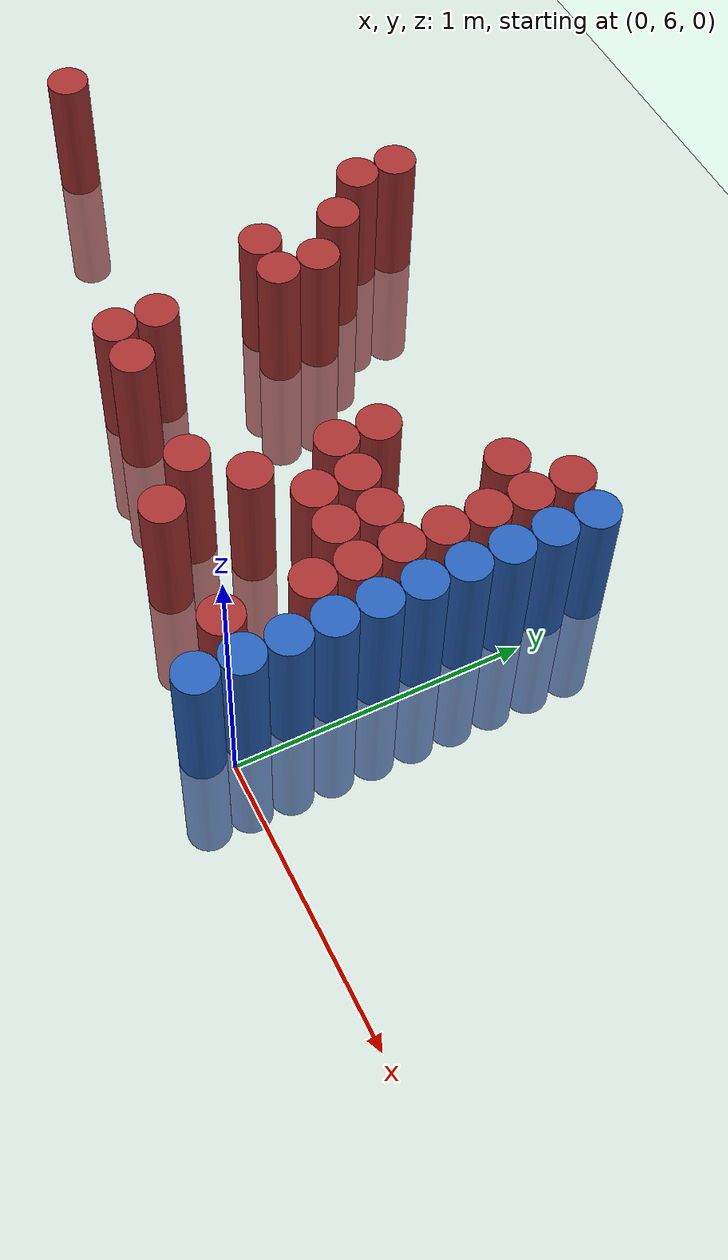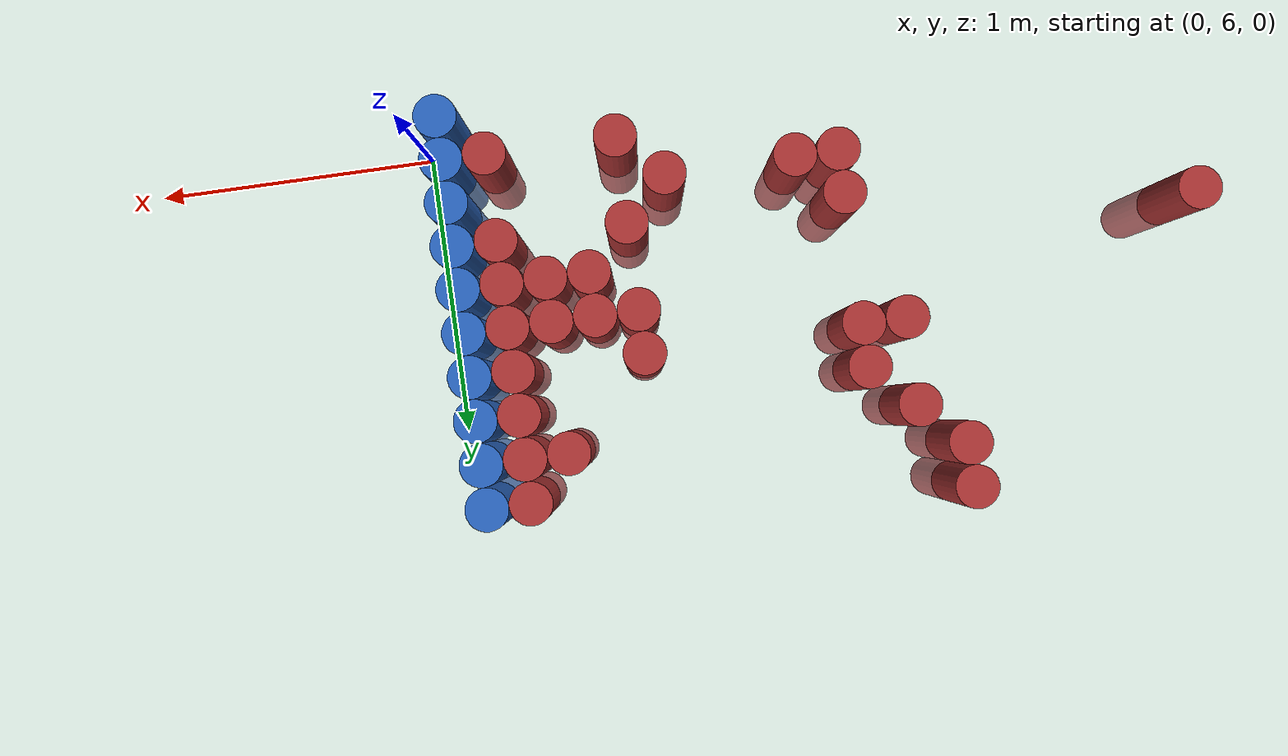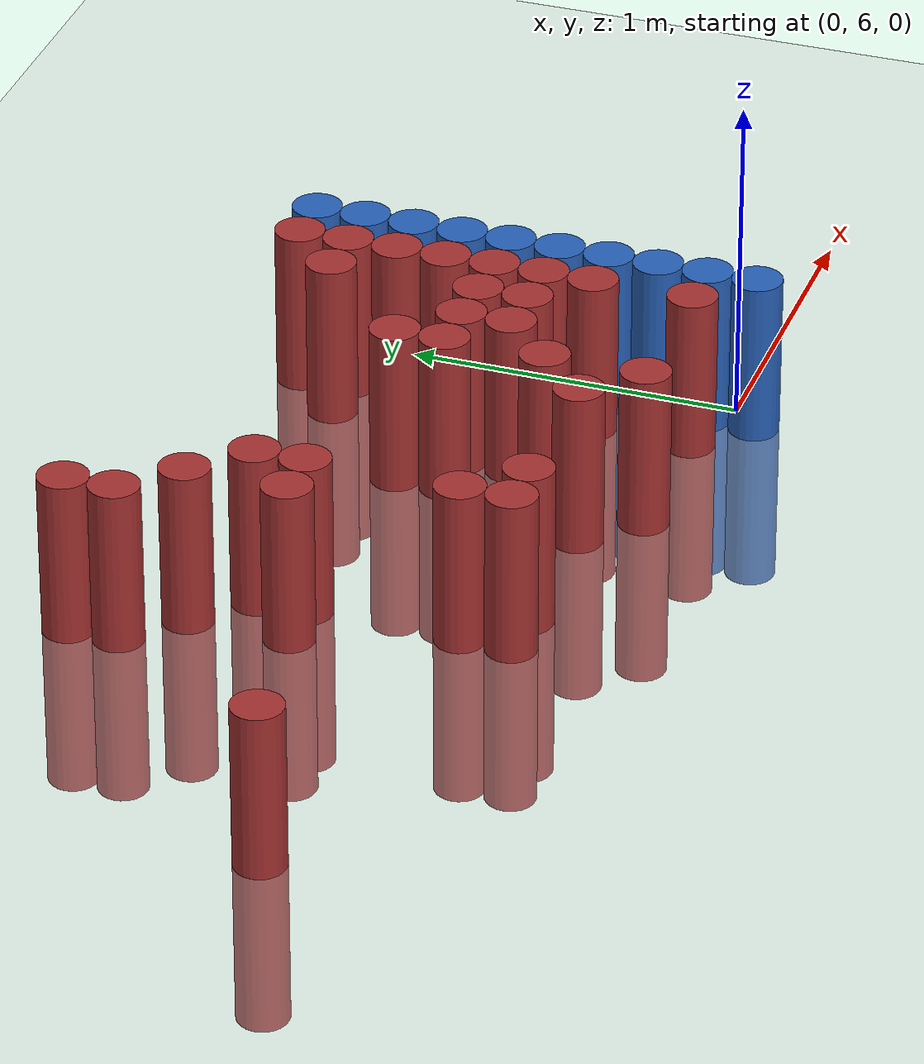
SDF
<sdf version="1.6">
 <world name="default">
  <model name="ground_plane">
   <static>1</static>
   <link name="link">
    <collision name="collision">
     <geometry><plane><normal>0 0 1</normal><size>100 100</size></plane></geometry>
     <surface><friction><ode><mu>100</mu><mu2>50</mu2></ode></friction></surface>
    </collision>
    <visual name="visual">
     <cast_shadows>0</cast_shadows>
     <geometry><plane><normal>0 0 1</normal><size>100 100</size></plane></geometry>
     <material>
      <script><uri>file://media/materials/scripts/gazebo.material</uri><name>Gazebo/Grey</name></script>
     </material>
    </visual>
   </link>
  </model>
  <model name="unit_cylinder_212">
   <static>1</static>
   <pose>-2.625000 6.525000 0.000000 0.000000 0.000000 0.000000</pose>
   <link name="link">
    <inertial>
     <mass>1</mass>
     <inertia><ixx>0.145833</ixx><ixy>0</ixy><ixz>0</ixz><iyy>0.145833</iyy><iyz>0</iyz><izz>0.125</izz></inertia>
    </inertial>
    <collision name="collision">
     <geometry><cylinder><radius>0.075000</radius><length>1</length></cylinder></geometry>
    </collision>
    <visual name="visual">
     <geometry><cylinder><radius>0.075000</radius><length>1</length></cylinder></geometry>
     <material>
      <ambient>0.648000 0.192000 0.192000 1</ambient>
      <diffuse>0.648000 0.192000 0.192000 1</diffuse>
     </material>
     <material>
      <script><name>Gazebo/Grey</name><uri>file://media/materials/scripts/gazebo.material</uri></script>
     </material>
    </visual>
    <sensor name="sensor_contact" type="contact"><contact><collision>collision</collision></contact></sensor>
   </link>
   <plugin filename="gz-sim-touchplugin-system" name="gz::sim::systems::TouchPlugin">
    <target>robot</target>
    <namespace>robot</namespace>
    <time>0.001</time>
    <enabled>true</enabled>
   </plugin>
  </model>
  <model name="unit_cylinder_220">
   <static>1</static>
   <pose>-1.725000 7.275000 0.000000 0.000000 0.000000 0.000000</pose>
   <link name="link">
    <inertial>
     <mass>1</mass>
     <inertia><ixx>0.145833</ixx><ixy>0</ixy><ixz>0</ixz><iyy>0.145833</iyy><iyz>0</iyz><izz>0.125</izz></inertia>
    </inertial>
    <collision name="collision">
     <geometry><cylinder><radius>0.075000</radius><length>1</length></cylinder></geometry>
    </collision>
    <visual name="visual">
     <geometry><cylinder><radius>0.075000</radius><length>1</length></cylinder></geometry>
     <material>
      <ambient>0.648000 0.192000 0.192000 1</ambient>
      <diffuse>0.648000 0.192000 0.192000 1</diffuse>
     </material>
     <material>
      <script><name>Gazebo/Grey</name><uri>file://media/materials/scripts/gazebo.material</uri></script>
     </material>
    </visual>
    <sensor name="sensor_contact" type="contact"><contact><collision>collision</collision></contact></sensor>
   </link>
   <plugin filename="gz-sim-touchplugin-system" name="gz::sim::systems::TouchPlugin">
    <target>robot</target>
    <namespace>robot</namespace>
    <time>0.001</time>
    <enabled>true</enabled>
   </plugin>
  </model>
  <model name="unit_cylinder_221">
   <static>1</static>
   <pose>-1.725000 7.425000 0.000000 0.000000 0.000000 0.000000</pose>
   <link name="link">
    <inertial>
     <mass>1</mass>
     <inertia><ixx>0.145833</ixx><ixy>0</ixy><ixz>0</ixz><iyy>0.145833</iyy><iyz>0</iyz><izz>0.125</izz></inertia>
    </inertial>
    <collision name="collision">
     <geometry><cylinder><radius>0.075000</radius><length>1</length></cylinder></geometry>
    </collision>
    <visual name="visual">
     <geometry><cylinder><radius>0.075000</radius><length>1</length></cylinder></geometry>
     <material>
      <ambient>0.648000 0.192000 0.192000 1</ambient>
      <diffuse>0.648000 0.192000 0.192000 1</diffuse>
     </material>
     <material>
      <script><name>Gazebo/Grey</name><uri>file://media/materials/scripts/gazebo.material</uri></script>
     </material>
    </visual>
    <sensor name="sensor_contact" type="contact"><contact><collision>collision</collision></contact></sensor>
   </link>
   <plugin filename="gz-sim-touchplugin-system" name="gz::sim::systems::TouchPlugin">
    <target>robot</target>
    <namespace>robot</namespace>
    <time>0.001</time>
    <enabled>true</enabled>
   </plugin>
  </model>
  <model name="unit_cylinder_225">
   <static>1</static>
   <pose>-1.575000 6.825000 0.000000 0.000000 0.000000 0.000000</pose>
   <link name="link">
    <inertial>
     <mass>1</mass>
     <inertia><ixx>0.145833</ixx><ixy>0</ixy><ixz>0</ixz><iyy>0.145833</iyy><iyz>0</iyz><izz>0.125</izz></inertia>
    </inertial>
    <collision name="collision">
     <geometry><cylinder><radius>0.075000</radius><length>1</length></cylinder></geometry>
    </collision>
    <visual name="visual">
     <geometry><cylinder><radius>0.075000</radius><length>1</length></cylinder></geometry>
     <material>
      <ambient>0.648000 0.192000 0.192000 1</ambient>
      <diffuse>0.648000 0.192000 0.192000 1</diffuse>
     </material>
     <material>
      <script><name>Gazebo/Grey</name><uri>file://media/materials/scripts/gazebo.material</uri></script>
     </material>
    </visual>
    <sensor name="sensor_contact" type="contact"><contact><collision>collision</collision></contact></sensor>
   </link>
   <plugin filename="gz-sim-touchplugin-system" name="gz::sim::systems::TouchPlugin">
    <target>robot</target>
    <namespace>robot</namespace>
    <time>0.001</time>
    <enabled>true</enabled>
   </plugin>
  </model>
  <model name="unit_cylinder_226">
   <static>1</static>
   <pose>-1.575000 7.125000 0.000000 0.000000 0.000000 0.000000</pose>
   <link name="link">
    <inertial>
     <mass>1</mass>
     <inertia><ixx>0.145833</ixx><ixy>0</ixy><ixz>0</ixz><iyy>0.145833</iyy><iyz>0</iyz><izz>0.125</izz></inertia>
    </inertial>
    <collision name="collision">
     <geometry><cylinder><radius>0.075000</radius><length>1</length></cylinder></geometry>
    </collision>
    <visual name="visual">
     <geometry><cylinder><radius>0.075000</radius><length>1</length></cylinder></geometry>
     <material>
      <ambient>0.648000 0.192000 0.192000 1</ambient>
      <diffuse>0.648000 0.192000 0.192000 1</diffuse>
     </material>
     <material>
      <script><name>Gazebo/Grey</name><uri>file://media/materials/scripts/gazebo.material</uri></script>
     </material>
    </visual>
    <sensor name="sensor_contact" type="contact"><contact><collision>collision</collision></contact></sensor>
   </link>
   <plugin filename="gz-sim-touchplugin-system" name="gz::sim::systems::TouchPlugin">
    <target>robot</target>
    <namespace>robot</namespace>
    <time>0.001</time>
    <enabled>true</enabled>
   </plugin>
  </model>
  <model name="unit_cylinder_234">
   <static>1</static>
   <pose>-1.425000 6.225000 0.000000 0.000000 0.000000 0.000000</pose>
   <link name="link">
    <inertial>
     <mass>1</mass>
     <inertia><ixx>0.145833</ixx><ixy>0</ixy><ixz>0</ixz><iyy>0.145833</iyy><iyz>0</iyz><izz>0.125</izz></inertia>
    </inertial>
    <collision name="collision">
     <geometry><cylinder><radius>0.075000</radius><length>1</length></cylinder></geometry>
    </collision>
    <visual name="visual">
     <geometry><cylinder><radius>0.075000</radius><length>1</length></cylinder></geometry>
     <material>
      <ambient>0.648000 0.192000 0.192000 1</ambient>
      <diffuse>0.648000 0.192000 0.192000 1</diffuse>
     </material>
     <material>
      <script><name>Gazebo/Grey</name><uri>file://media/materials/scripts/gazebo.material</uri></script>
     </material>
    </visual>
    <sensor name="sensor_contact" type="contact"><contact><collision>collision</collision></contact></sensor>
   </link>
   <plugin filename="gz-sim-touchplugin-system" name="gz::sim::systems::TouchPlugin">
    <target>robot</target>
    <namespace>robot</namespace>
    <time>0.001</time>
    <enabled>true</enabled>
   </plugin>
  </model>
  <model name="unit_cylinder_235">
   <static>1</static>
   <pose>-1.425000 6.375000 0.000000 0.000000 0.000000 0.000000</pose>
   <link name="link">
    <inertial>
     <mass>1</mass>
     <inertia><ixx>0.145833</ixx><ixy>0</ixy><ixz>0</ixz><iyy>0.145833</iyy><iyz>0</iyz><izz>0.125</izz></inertia>
    </inertial>
    <collision name="collision">
     <geometry><cylinder><radius>0.075000</radius><length>1</length></cylinder></geometry>
    </collision>
    <visual name="visual">
     <geometry><cylinder><radius>0.075000</radius><length>1</length></cylinder></geometry>
     <material>
      <ambient>0.648000 0.192000 0.192000 1</ambient>
      <diffuse>0.648000 0.192000 0.192000 1</diffuse>
     </material>
     <material>
      <script><name>Gazebo/Grey</name><uri>file://media/materials/scripts/gazebo.material</uri></script>
     </material>
    </visual>
    <sensor name="sensor_contact" type="contact"><contact><collision>collision</collision></contact></sensor>
   </link>
   <plugin filename="gz-sim-touchplugin-system" name="gz::sim::systems::TouchPlugin">
    <target>robot</target>
    <namespace>robot</namespace>
    <time>0.001</time>
    <enabled>true</enabled>
   </plugin>
  </model>
  <model name="unit_cylinder_236">
   <static>1</static>
   <pose>-1.425000 6.825000 0.000000 0.000000 0.000000 0.000000</pose>
   <link name="link">
    <inertial>
     <mass>1</mass>
     <inertia><ixx>0.145833</ixx><ixy>0</ixy><ixz>0</ixz><iyy>0.145833</iyy><iyz>0</iyz><izz>0.125</izz></inertia>
    </inertial>
    <collision name="collision">
     <geometry><cylinder><radius>0.075000</radius><length>1</length></cylinder></geometry>
    </collision>
    <visual name="visual">
     <geometry><cylinder><radius>0.075000</radius><length>1</length></cylinder></geometry>
     <material>
      <ambient>0.648000 0.192000 0.192000 1</ambient>
      <diffuse>0.648000 0.192000 0.192000 1</diffuse>
     </material>
     <material>
      <script><name>Gazebo/Grey</name><uri>file://media/materials/scripts/gazebo.material</uri></script>
     </material>
    </visual>
    <sensor name="sensor_contact" type="contact"><contact><collision>collision</collision></contact></sensor>
   </link>
   <plugin filename="gz-sim-touchplugin-system" name="gz::sim::systems::TouchPlugin">
    <target>robot</target>
    <namespace>robot</namespace>
    <time>0.001</time>
    <enabled>true</enabled>
   </plugin>
  </model>
  <model name="unit_cylinder_237">
   <static>1</static>
   <pose>-1.425000 6.975000 0.000000 0.000000 0.000000 0.000000</pose>
   <link name="link">
    <inertial>
     <mass>1</mass>
     <inertia><ixx>0.145833</ixx><ixy>0</ixy><ixz>0</ixz><iyy>0.145833</iyy><iyz>0</iyz><izz>0.125</izz></inertia>
    </inertial>
    <collision name="collision">
     <geometry><cylinder><radius>0.075000</radius><length>1</length></cylinder></geometry>
    </collision>
    <visual name="visual">
     <geometry><cylinder><radius>0.075000</radius><length>1</length></cylinder></geometry>
     <material>
      <ambient>0.648000 0.192000 0.192000 1</ambient>
      <diffuse>0.648000 0.192000 0.192000 1</diffuse>
     </material>
     <material>
      <script><name>Gazebo/Grey</name><uri>file://media/materials/scripts/gazebo.material</uri></script>
     </material>
    </visual>
    <sensor name="sensor_contact" type="contact"><contact><collision>collision</collision></contact></sensor>
   </link>
   <plugin filename="gz-sim-touchplugin-system" name="gz::sim::systems::TouchPlugin">
    <target>robot</target>
    <namespace>robot</namespace>
    <time>0.001</time>
    <enabled>true</enabled>
   </plugin>
  </model>
  <model name="unit_cylinder_242">
   <static>1</static>
   <pose>-1.275000 6.225000 0.000000 0.000000 0.000000 0.000000</pose>
   <link name="link">
    <inertial>
     <mass>1</mass>
     <inertia><ixx>0.145833</ixx><ixy>0</ixy><ixz>0</ixz><iyy>0.145833</iyy><iyz>0</iyz><izz>0.125</izz></inertia>
    </inertial>
    <collision name="collision">
     <geometry><cylinder><radius>0.075000</radius><length>1</length></cylinder></geometry>
    </collision>
    <visual name="visual">
     <geometry><cylinder><radius>0.075000</radius><length>1</length></cylinder></geometry>
     <material>
      <ambient>0.648000 0.192000 0.192000 1</ambient>
      <diffuse>0.648000 0.192000 0.192000 1</diffuse>
     </material>
     <material>
      <script><name>Gazebo/Grey</name><uri>file://media/materials/scripts/gazebo.material</uri></script>
     </material>
    </visual>
    <sensor name="sensor_contact" type="contact"><contact><collision>collision</collision></contact></sensor>
   </link>
   <plugin filename="gz-sim-touchplugin-system" name="gz::sim::systems::TouchPlugin">
    <target>robot</target>
    <namespace>robot</namespace>
    <time>0.001</time>
    <enabled>true</enabled>
   </plugin>
  </model>
  <model name="unit_cylinder_255">
   <static>1</static>
   <pose>-0.825000 6.225000 0.000000 0.000000 0.000000 0.000000</pose>
   <link name="link">
    <inertial>
     <mass>1</mass>
     <inertia><ixx>0.145833</ixx><ixy>0</ixy><ixz>0</ixz><iyy>0.145833</iyy><iyz>0</iyz><izz>0.125</izz></inertia>
    </inertial>
    <collision name="collision">
     <geometry><cylinder><radius>0.075000</radius><length>1</length></cylinder></geometry>
    </collision>
    <visual name="visual">
     <geometry><cylinder><radius>0.075000</radius><length>1</length></cylinder></geometry>
     <material>
      <ambient>0.648000 0.192000 0.192000 1</ambient>
      <diffuse>0.648000 0.192000 0.192000 1</diffuse>
     </material>
     <material>
      <script><name>Gazebo/Grey</name><uri>file://media/materials/scripts/gazebo.material</uri></script>
     </material>
    </visual>
    <sensor name="sensor_contact" type="contact"><contact><collision>collision</collision></contact></sensor>
   </link>
   <plugin filename="gz-sim-touchplugin-system" name="gz::sim::systems::TouchPlugin">
    <target>robot</target>
    <namespace>robot</namespace>
    <time>0.001</time>
    <enabled>true</enabled>
   </plugin>
  </model>
  <model name="unit_cylinder_260">
   <static>1</static>
   <pose>-0.675000 6.075000 0.000000 0.000000 0.000000 0.000000</pose>
   <link name="link">
    <inertial>
     <mass>1</mass>
     <inertia><ixx>0.145833</ixx><ixy>0</ixy><ixz>0</ixz><iyy>0.145833</iyy><iyz>0</iyz><izz>0.125</izz></inertia>
    </inertial>
    <collision name="collision">
     <geometry><cylinder><radius>0.075000</radius><length>1</length></cylinder></geometry>
    </collision>
    <visual name="visual">
     <geometry><cylinder><radius>0.075000</radius><length>1</length></cylinder></geometry>
     <material>
      <ambient>0.648000 0.192000 0.192000 1</ambient>
      <diffuse>0.648000 0.192000 0.192000 1</diffuse>
     </material>
     <material>
      <script><name>Gazebo/Grey</name><uri>file://media/materials/scripts/gazebo.material</uri></script>
     </material>
    </visual>
    <sensor name="sensor_contact" type="contact"><contact><collision>collision</collision></contact></sensor>
   </link>
   <plugin filename="gz-sim-touchplugin-system" name="gz::sim::systems::TouchPlugin">
    <target>robot</target>
    <namespace>robot</namespace>
    <time>0.001</time>
    <enabled>true</enabled>
   </plugin>
  </model>
  <model name="unit_cylinder_261">
   <static>1</static>
   <pose>-0.675000 6.375000 0.000000 0.000000 0.000000 0.000000</pose>
   <link name="link">
    <inertial>
     <mass>1</mass>
     <inertia><ixx>0.145833</ixx><ixy>0</ixy><ixz>0</ixz><iyy>0.145833</iyy><iyz>0</iyz><izz>0.125</izz></inertia>
    </inertial>
    <collision name="collision">
     <geometry><cylinder><radius>0.075000</radius><length>1</length></cylinder></geometry>
    </collision>
    <visual name="visual">
     <geometry><cylinder><radius>0.075000</radius><length>1</length></cylinder></geometry>
     <material>
      <ambient>0.648000 0.192000 0.192000 1</ambient>
      <diffuse>0.648000 0.192000 0.192000 1</diffuse>
     </material>
     <material>
      <script><name>Gazebo/Grey</name><uri>file://media/materials/scripts/gazebo.material</uri></script>
     </material>
    </visual>
    <sensor name="sensor_contact" type="contact"><contact><collision>collision</collision></contact></sensor>
   </link>
   <plugin filename="gz-sim-touchplugin-system" name="gz::sim::systems::TouchPlugin">
    <target>robot</target>
    <namespace>robot</namespace>
    <time>0.001</time>
    <enabled>true</enabled>
   </plugin>
  </model>
  <model name="unit_cylinder_262">
   <static>1</static>
   <pose>-0.675000 6.675000 0.000000 0.000000 0.000000 0.000000</pose>
   <link name="link">
    <inertial>
     <mass>1</mass>
     <inertia><ixx>0.145833</ixx><ixy>0</ixy><ixz>0</ixz><iyy>0.145833</iyy><iyz>0</iyz><izz>0.125</izz></inertia>
    </inertial>
    <collision name="collision">
     <geometry><cylinder><radius>0.075000</radius><length>1</length></cylinder></geometry>
    </collision>
    <visual name="visual">
     <geometry><cylinder><radius>0.075000</radius><length>1</length></cylinder></geometry>
     <material>
      <ambient>0.648000 0.192000 0.192000 1</ambient>
      <diffuse>0.648000 0.192000 0.192000 1</diffuse>
     </material>
     <material>
      <script><name>Gazebo/Grey</name><uri>file://media/materials/scripts/gazebo.material</uri></script>
     </material>
    </visual>
    <sensor name="sensor_contact" type="contact"><contact><collision>collision</collision></contact></sensor>
   </link>
   <plugin filename="gz-sim-touchplugin-system" name="gz::sim::systems::TouchPlugin">
    <target>robot</target>
    <namespace>robot</namespace>
    <time>0.001</time>
    <enabled>true</enabled>
   </plugin>
  </model>
  <model name="unit_cylinder_263">
   <static>1</static>
   <pose>-0.675000 6.825000 0.000000 0.000000 0.000000 0.000000</pose>
   <link name="link">
    <inertial>
     <mass>1</mass>
     <inertia><ixx>0.145833</ixx><ixy>0</ixy><ixz>0</ixz><iyy>0.145833</iyy><iyz>0</iyz><izz>0.125</izz></inertia>
    </inertial>
    <collision name="collision">
     <geometry><cylinder><radius>0.075000</radius><length>1</length></cylinder></geometry>
    </collision>
    <visual name="visual">
     <geometry><cylinder><radius>0.075000</radius><length>1</length></cylinder></geometry>
     <material>
      <ambient>0.648000 0.192000 0.192000 1</ambient>
      <diffuse>0.648000 0.192000 0.192000 1</diffuse>
     </material>
     <material>
      <script><name>Gazebo/Grey</name><uri>file://media/materials/scripts/gazebo.material</uri></script>
     </material>
    </visual>
    <sensor name="sensor_contact" type="contact"><contact><collision>collision</collision></contact></sensor>
   </link>
   <plugin filename="gz-sim-touchplugin-system" name="gz::sim::systems::TouchPlugin">
    <target>robot</target>
    <namespace>robot</namespace>
    <time>0.001</time>
    <enabled>true</enabled>
   </plugin>
  </model>
  <model name="unit_cylinder_275">
   <static>1</static>
   <pose>-0.525000 6.525000 0.000000 0.000000 0.000000 0.000000</pose>
   <link name="link">
    <inertial>
     <mass>1</mass>
     <inertia><ixx>0.145833</ixx><ixy>0</ixy><ixz>0</ixz><iyy>0.145833</iyy><iyz>0</iyz><izz>0.125</izz></inertia>
    </inertial>
    <collision name="collision">
     <geometry><cylinder><radius>0.075000</radius><length>1</length></cylinder></geometry>
    </collision>
    <visual name="visual">
     <geometry><cylinder><radius>0.075000</radius><length>1</length></cylinder></geometry>
     <material>
      <ambient>0.648000 0.192000 0.192000 1</ambient>
      <diffuse>0.648000 0.192000 0.192000 1</diffuse>
     </material>
     <material>
      <script><name>Gazebo/Grey</name><uri>file://media/materials/scripts/gazebo.material</uri></script>
     </material>
    </visual>
    <sensor name="sensor_contact" type="contact"><contact><collision>collision</collision></contact></sensor>
   </link>
   <plugin filename="gz-sim-touchplugin-system" name="gz::sim::systems::TouchPlugin">
    <target>robot</target>
    <namespace>robot</namespace>
    <time>0.001</time>
    <enabled>true</enabled>
   </plugin>
  </model>
  <model name="unit_cylinder_276">
   <static>1</static>
   <pose>-0.525000 6.675000 0.000000 0.000000 0.000000 0.000000</pose>
   <link name="link">
    <inertial>
     <mass>1</mass>
     <inertia><ixx>0.145833</ixx><ixy>0</ixy><ixz>0</ixz><iyy>0.145833</iyy><iyz>0</iyz><izz>0.125</izz></inertia>
    </inertial>
    <collision name="collision">
     <geometry><cylinder><radius>0.075000</radius><length>1</length></cylinder></geometry>
    </collision>
    <visual name="visual">
     <geometry><cylinder><radius>0.075000</radius><length>1</length></cylinder></geometry>
     <material>
      <ambient>0.648000 0.192000 0.192000 1</ambient>
      <diffuse>0.648000 0.192000 0.192000 1</diffuse>
     </material>
     <material>
      <script><name>Gazebo/Grey</name><uri>file://media/materials/scripts/gazebo.material</uri></script>
     </material>
    </visual>
    <sensor name="sensor_contact" type="contact"><contact><collision>collision</collision></contact></sensor>
   </link>
   <plugin filename="gz-sim-touchplugin-system" name="gz::sim::systems::TouchPlugin">
    <target>robot</target>
    <namespace>robot</namespace>
    <time>0.001</time>
    <enabled>true</enabled>
   </plugin>
  </model>
  <model name="unit_cylinder_288">
   <static>1</static>
   <pose>-0.375000 6.525000 0.000000 0.000000 0.000000 0.000000</pose>
   <link name="link">
    <inertial>
     <mass>1</mass>
     <inertia><ixx>0.145833</ixx><ixy>0</ixy><ixz>0</ixz><iyy>0.145833</iyy><iyz>0</iyz><izz>0.125</izz></inertia>
    </inertial>
    <collision name="collision">
     <geometry><cylinder><radius>0.075000</radius><length>1</length></cylinder></geometry>
    </collision>
    <visual name="visual">
     <geometry><cylinder><radius>0.075000</radius><length>1</length></cylinder></geometry>
     <material>
      <ambient>0.648000 0.192000 0.192000 1</ambient>
      <diffuse>0.648000 0.192000 0.192000 1</diffuse>
     </material>
     <material>
      <script><name>Gazebo/Grey</name><uri>file://media/materials/scripts/gazebo.material</uri></script>
     </material>
    </visual>
    <sensor name="sensor_contact" type="contact"><contact><collision>collision</collision></contact></sensor>
   </link>
   <plugin filename="gz-sim-touchplugin-system" name="gz::sim::systems::TouchPlugin">
    <target>robot</target>
    <namespace>robot</namespace>
    <time>0.001</time>
    <enabled>true</enabled>
   </plugin>
  </model>
  <model name="unit_cylinder_289">
   <static>1</static>
   <pose>-0.375000 6.675000 0.000000 0.000000 0.000000 0.000000</pose>
   <link name="link">
    <inertial>
     <mass>1</mass>
     <inertia><ixx>0.145833</ixx><ixy>0</ixy><ixz>0</ixz><iyy>0.145833</iyy><iyz>0</iyz><izz>0.125</izz></inertia>
    </inertial>
    <collision name="collision">
     <geometry><cylinder><radius>0.075000</radius><length>1</length></cylinder></geometry>
    </collision>
    <visual name="visual">
     <geometry><cylinder><radius>0.075000</radius><length>1</length></cylinder></geometry>
     <material>
      <ambient>0.648000 0.192000 0.192000 1</ambient>
      <diffuse>0.648000 0.192000 0.192000 1</diffuse>
     </material>
     <material>
      <script><name>Gazebo/Grey</name><uri>file://media/materials/scripts/gazebo.material</uri></script>
     </material>
    </visual>
    <sensor name="sensor_contact" type="contact"><contact><collision>collision</collision></contact></sensor>
   </link>
   <plugin filename="gz-sim-touchplugin-system" name="gz::sim::systems::TouchPlugin">
    <target>robot</target>
    <namespace>robot</namespace>
    <time>0.001</time>
    <enabled>true</enabled>
   </plugin>
  </model>
  <model name="unit_cylinder_290">
   <static>1</static>
   <pose>-0.375000 7.125000 0.000000 0.000000 0.000000 0.000000</pose>
   <link name="link">
    <inertial>
     <mass>1</mass>
     <inertia><ixx>0.145833</ixx><ixy>0</ixy><ixz>0</ixz><iyy>0.145833</iyy><iyz>0</iyz><izz>0.125</izz></inertia>
    </inertial>
    <collision name="collision">
     <geometry><cylinder><radius>0.075000</radius><length>1</length></cylinder></geometry>
    </collision>
    <visual name="visual">
     <geometry><cylinder><radius>0.075000</radius><length>1</length></cylinder></geometry>
     <material>
      <ambient>0.648000 0.192000 0.192000 1</ambient>
      <diffuse>0.648000 0.192000 0.192000 1</diffuse>
     </material>
     <material>
      <script><name>Gazebo/Grey</name><uri>file://media/materials/scripts/gazebo.material</uri></script>
     </material>
    </visual>
    <sensor name="sensor_contact" type="contact"><contact><collision>collision</collision></contact></sensor>
   </link>
   <plugin filename="gz-sim-touchplugin-system" name="gz::sim::systems::TouchPlugin">
    <target>robot</target>
    <namespace>robot</namespace>
    <time>0.001</time>
    <enabled>true</enabled>
   </plugin>
  </model>
  <model name="unit_cylinder_298">
   <static>1</static>
   <pose>-0.225000 6.075000 0.000000 0.000000 0.000000 0.000000</pose>
   <link name="link">
    <inertial>
     <mass>1</mass>
     <inertia><ixx>0.145833</ixx><ixy>0</ixy><ixz>0</ixz><iyy>0.145833</iyy><iyz>0</iyz><izz>0.125</izz></inertia>
    </inertial>
    <collision name="collision">
     <geometry><cylinder><radius>0.075000</radius><length>1</length></cylinder></geometry>
    </collision>
    <visual name="visual">
     <geometry><cylinder><radius>0.075000</radius><length>1</length></cylinder></geometry>
     <material>
      <ambient>0.648000 0.192000 0.192000 1</ambient>
      <diffuse>0.648000 0.192000 0.192000 1</diffuse>
     </material>
     <material>
      <script><name>Gazebo/Grey</name><uri>file://media/materials/scripts/gazebo.material</uri></script>
     </material>
    </visual>
    <sensor name="sensor_contact" type="contact"><contact><collision>collision</collision></contact></sensor>
   </link>
   <plugin filename="gz-sim-touchplugin-system" name="gz::sim::systems::TouchPlugin">
    <target>robot</target>
    <namespace>robot</namespace>
    <time>0.001</time>
    <enabled>true</enabled>
   </plugin>
  </model>
  <model name="unit_cylinder_299">
   <static>1</static>
   <pose>-0.225000 6.375000 0.000000 0.000000 0.000000 0.000000</pose>
   <link name="link">
    <inertial>
     <mass>1</mass>
     <inertia><ixx>0.145833</ixx><ixy>0</ixy><ixz>0</ixz><iyy>0.145833</iyy><iyz>0</iyz><izz>0.125</izz></inertia>
    </inertial>
    <collision name="collision">
     <geometry><cylinder><radius>0.075000</radius><length>1</length></cylinder></geometry>
    </collision>
    <visual name="visual">
     <geometry><cylinder><radius>0.075000</radius><length>1</length></cylinder></geometry>
     <material>
      <ambient>0.648000 0.192000 0.192000 1</ambient>
      <diffuse>0.648000 0.192000 0.192000 1</diffuse>
     </material>
     <material>
      <script><name>Gazebo/Grey</name><uri>file://media/materials/scripts/gazebo.material</uri></script>
     </material>
    </visual>
    <sensor name="sensor_contact" type="contact"><contact><collision>collision</collision></contact></sensor>
   </link>
   <plugin filename="gz-sim-touchplugin-system" name="gz::sim::systems::TouchPlugin">
    <target>robot</target>
    <namespace>robot</namespace>
    <time>0.001</time>
    <enabled>true</enabled>
   </plugin>
  </model>
  <model name="unit_cylinder_300">
   <static>1</static>
   <pose>-0.225000 6.525000 0.000000 0.000000 0.000000 0.000000</pose>
   <link name="link">
    <inertial>
     <mass>1</mass>
     <inertia><ixx>0.145833</ixx><ixy>0</ixy><ixz>0</ixz><iyy>0.145833</iyy><iyz>0</iyz><izz>0.125</izz></inertia>
    </inertial>
    <collision name="collision">
     <geometry><cylinder><radius>0.075000</radius><length>1</length></cylinder></geometry>
    </collision>
    <visual name="visual">
     <geometry><cylinder><radius>0.075000</radius><length>1</length></cylinder></geometry>
     <material>
      <ambient>0.648000 0.192000 0.192000 1</ambient>
      <diffuse>0.648000 0.192000 0.192000 1</diffuse>
     </material>
     <material>
      <script><name>Gazebo/Grey</name><uri>file://media/materials/scripts/gazebo.material</uri></script>
     </material>
    </visual>
    <sensor name="sensor_contact" type="contact"><contact><collision>collision</collision></contact></sensor>
   </link>
   <plugin filename="gz-sim-touchplugin-system" name="gz::sim::systems::TouchPlugin">
    <target>robot</target>
    <namespace>robot</namespace>
    <time>0.001</time>
    <enabled>true</enabled>
   </plugin>
  </model>
  <model name="unit_cylinder_301">
   <static>1</static>
   <pose>-0.225000 6.675000 0.000000 0.000000 0.000000 0.000000</pose>
   <link name="link">
    <inertial>
     <mass>1</mass>
     <inertia><ixx>0.145833</ixx><ixy>0</ixy><ixz>0</ixz><iyy>0.145833</iyy><iyz>0</iyz><izz>0.125</izz></inertia>
    </inertial>
    <collision name="collision">
     <geometry><cylinder><radius>0.075000</radius><length>1</length></cylinder></geometry>
    </collision>
    <visual name="visual">
     <geometry><cylinder><radius>0.075000</radius><length>1</length></cylinder></geometry>
     <material>
      <ambient>0.648000 0.192000 0.192000 1</ambient>
      <diffuse>0.648000 0.192000 0.192000 1</diffuse>
     </material>
     <material>
      <script><name>Gazebo/Grey</name><uri>file://media/materials/scripts/gazebo.material</uri></script>
     </material>
    </visual>
    <sensor name="sensor_contact" type="contact"><contact><collision>collision</collision></contact></sensor>
   </link>
   <plugin filename="gz-sim-touchplugin-system" name="gz::sim::systems::TouchPlugin">
    <target>robot</target>
    <namespace>robot</namespace>
    <time>0.001</time>
    <enabled>true</enabled>
   </plugin>
  </model>
  <model name="unit_cylinder_302">
   <static>1</static>
   <pose>-0.225000 6.825000 0.000000 0.000000 0.000000 0.000000</pose>
   <link name="link">
    <inertial>
     <mass>1</mass>
     <inertia><ixx>0.145833</ixx><ixy>0</ixy><ixz>0</ixz><iyy>0.145833</iyy><iyz>0</iyz><izz>0.125</izz></inertia>
    </inertial>
    <collision name="collision">
     <geometry><cylinder><radius>0.075000</radius><length>1</length></cylinder></geometry>
    </collision>
    <visual name="visual">
     <geometry><cylinder><radius>0.075000</radius><length>1</length></cylinder></geometry>
     <material>
      <ambient>0.648000 0.192000 0.192000 1</ambient>
      <diffuse>0.648000 0.192000 0.192000 1</diffuse>
     </material>
     <material>
      <script><name>Gazebo/Grey</name><uri>file://media/materials/scripts/gazebo.material</uri></script>
     </material>
    </visual>
    <sensor name="sensor_contact" type="contact"><contact><collision>collision</collision></contact></sensor>
   </link>
   <plugin filename="gz-sim-touchplugin-system" name="gz::sim::systems::TouchPlugin">
    <target>robot</target>
    <namespace>robot</namespace>
    <time>0.001</time>
    <enabled>true</enabled>
   </plugin>
  </model>
  <model name="unit_cylinder_303">
   <static>1</static>
   <pose>-0.225000 6.975000 0.000000 0.000000 0.000000 0.000000</pose>
   <link name="link">
    <inertial>
     <mass>1</mass>
     <inertia><ixx>0.145833</ixx><ixy>0</ixy><ixz>0</ixz><iyy>0.145833</iyy><iyz>0</iyz><izz>0.125</izz></inertia>
    </inertial>
    <collision name="collision">
     <geometry><cylinder><radius>0.075000</radius><length>1</length></cylinder></geometry>
    </collision>
    <visual name="visual">
     <geometry><cylinder><radius>0.075000</radius><length>1</length></cylinder></geometry>
     <material>
      <ambient>0.648000 0.192000 0.192000 1</ambient>
      <diffuse>0.648000 0.192000 0.192000 1</diffuse>
     </material>
     <material>
      <script><name>Gazebo/Grey</name><uri>file://media/materials/scripts/gazebo.material</uri></script>
     </material>
    </visual>
    <sensor name="sensor_contact" type="contact"><contact><collision>collision</collision></contact></sensor>
   </link>
   <plugin filename="gz-sim-touchplugin-system" name="gz::sim::systems::TouchPlugin">
    <target>robot</target>
    <namespace>robot</namespace>
    <time>0.001</time>
    <enabled>true</enabled>
   </plugin>
  </model>
  <model name="unit_cylinder_304">
   <static>1</static>
   <pose>-0.225000 7.125000 0.000000 0.000000 0.000000 0.000000</pose>
   <link name="link">
    <inertial>
     <mass>1</mass>
     <inertia><ixx>0.145833</ixx><ixy>0</ixy><ixz>0</ixz><iyy>0.145833</iyy><iyz>0</iyz><izz>0.125</izz></inertia>
    </inertial>
    <collision name="collision">
     <geometry><cylinder><radius>0.075000</radius><length>1</length></cylinder></geometry>
    </collision>
    <visual name="visual">
     <geometry><cylinder><radius>0.075000</radius><length>1</length></cylinder></geometry>
     <material>
      <ambient>0.648000 0.192000 0.192000 1</ambient>
      <diffuse>0.648000 0.192000 0.192000 1</diffuse>
     </material>
     <material>
      <script><name>Gazebo/Grey</name><uri>file://media/materials/scripts/gazebo.material</uri></script>
     </material>
    </visual>
    <sensor name="sensor_contact" type="contact"><contact><collision>collision</collision></contact></sensor>
   </link>
   <plugin filename="gz-sim-touchplugin-system" name="gz::sim::systems::TouchPlugin">
    <target>robot</target>
    <namespace>robot</namespace>
    <time>0.001</time>
    <enabled>true</enabled>
   </plugin>
  </model>
  <model name="unit_cylinder_305">
   <static>1</static>
   <pose>-0.225000 7.275000 0.000000 0.000000 0.000000 0.000000</pose>
   <link name="link">
    <inertial>
     <mass>1</mass>
     <inertia><ixx>0.145833</ixx><ixy>0</ixy><ixz>0</ixz><iyy>0.145833</iyy><iyz>0</iyz><izz>0.125</izz></inertia>
    </inertial>
    <collision name="collision">
     <geometry><cylinder><radius>0.075000</radius><length>1</length></cylinder></geometry>
    </collision>
    <visual name="visual">
     <geometry><cylinder><radius>0.075000</radius><length>1</length></cylinder></geometry>
     <material>
      <ambient>0.648000 0.192000 0.192000 1</ambient>
      <diffuse>0.648000 0.192000 0.192000 1</diffuse>
     </material>
     <material>
      <script><name>Gazebo/Grey</name><uri>file://media/materials/scripts/gazebo.material</uri></script>
     </material>
    </visual>
    <sensor name="sensor_contact" type="contact"><contact><collision>collision</collision></contact></sensor>
   </link>
   <plugin filename="gz-sim-touchplugin-system" name="gz::sim::systems::TouchPlugin">
    <target>robot</target>
    <namespace>robot</namespace>
    <time>0.001</time>
    <enabled>true</enabled>
   </plugin>
  </model>
  <model name="unit_cylinder_316">
   <static>1</static>
   <pose>-0.075000 5.925000 0.000000 0.000000 0.000000 0.000000</pose>
   <link name="link">
    <inertial>
     <mass>1</mass>
     <inertia><ixx>0.145833</ixx><ixy>0</ixy><ixz>0</ixz><iyy>0.145833</iyy><iyz>0</iyz><izz>0.125</izz></inertia>
    </inertial>
    <collision name="collision">
     <geometry><cylinder><radius>0.075000</radius><length>1</length></cylinder></geometry>
    </collision>
    <visual name="visual">
     <geometry><cylinder><radius>0.075000</radius><length>1</length></cylinder></geometry>
     <material>
      <ambient>0.152000 0.379000 0.720000 1</ambient>
      <diffuse>0.152000 0.379000 0.720000 1</diffuse>
     </material>
     <material>
      <script><name>Gazebo/Grey</name><uri>file://media/materials/scripts/gazebo.material</uri></script>
     </material>
    </visual>
    <sensor name="sensor_contact" type="contact"><contact><collision>collision</collision></contact></sensor>
   </link>
   <plugin filename="gz-sim-touchplugin-system" name="gz::sim::systems::TouchPlugin">
    <target>robot</target>
    <namespace>robot</namespace>
    <time>0.001</time>
    <enabled>true</enabled>
   </plugin>
  </model>
  <model name="unit_cylinder_317">
   <static>1</static>
   <pose>-0.075000 6.075000 0.000000 0.000000 0.000000 0.000000</pose>
   <link name="link">
    <inertial>
     <mass>1</mass>
     <inertia><ixx>0.145833</ixx><ixy>0</ixy><ixz>0</ixz><iyy>0.145833</iyy><iyz>0</iyz><izz>0.125</izz></inertia>
    </inertial>
    <collision name="collision">
     <geometry><cylinder><radius>0.075000</radius><length>1</length></cylinder></geometry>
    </collision>
    <visual name="visual">
     <geometry><cylinder><radius>0.075000</radius><length>1</length></cylinder></geometry>
     <material>
      <ambient>0.152000 0.379000 0.720000 1</ambient>
      <diffuse>0.152000 0.379000 0.720000 1</diffuse>
     </material>
     <material>
      <script><name>Gazebo/Grey</name><uri>file://media/materials/scripts/gazebo.material</uri></script>
     </material>
    </visual>
    <sensor name="sensor_contact" type="contact"><contact><collision>collision</collision></contact></sensor>
   </link>
   <plugin filename="gz-sim-touchplugin-system" name="gz::sim::systems::TouchPlugin">
    <target>robot</target>
    <namespace>robot</namespace>
    <time>0.001</time>
    <enabled>true</enabled>
   </plugin>
  </model>
  <model name="unit_cylinder_318">
   <static>1</static>
   <pose>-0.075000 6.225000 0.000000 0.000000 0.000000 0.000000</pose>
   <link name="link">
    <inertial>
     <mass>1</mass>
     <inertia><ixx>0.145833</ixx><ixy>0</ixy><ixz>0</ixz><iyy>0.145833</iyy><iyz>0</iyz><izz>0.125</izz></inertia>
    </inertial>
    <collision name="collision">
     <geometry><cylinder><radius>0.075000</radius><length>1</length></cylinder></geometry>
    </collision>
    <visual name="visual">
     <geometry><cylinder><radius>0.075000</radius><length>1</length></cylinder></geometry>
     <material>
      <ambient>0.152000 0.379000 0.720000 1</ambient>
      <diffuse>0.152000 0.379000 0.720000 1</diffuse>
     </material>
     <material>
      <script><name>Gazebo/Grey</name><uri>file://media/materials/scripts/gazebo.material</uri></script>
     </material>
    </visual>
    <sensor name="sensor_contact" type="contact"><contact><collision>collision</collision></contact></sensor>
   </link>
   <plugin filename="gz-sim-touchplugin-system" name="gz::sim::systems::TouchPlugin">
    <target>robot</target>
    <namespace>robot</namespace>
    <time>0.001</time>
    <enabled>true</enabled>
   </plugin>
  </model>
  <model name="unit_cylinder_319">
   <static>1</static>
   <pose>-0.075000 6.375000 0.000000 0.000000 0.000000 0.000000</pose>
   <link name="link">
    <inertial>
     <mass>1</mass>
     <inertia><ixx>0.145833</ixx><ixy>0</ixy><ixz>0</ixz><iyy>0.145833</iyy><iyz>0</iyz><izz>0.125</izz></inertia>
    </inertial>
    <collision name="collision">
     <geometry><cylinder><radius>0.075000</radius><length>1</length></cylinder></geometry>
    </collision>
    <visual name="visual">
     <geometry><cylinder><radius>0.075000</radius><length>1</length></cylinder></geometry>
     <material>
      <ambient>0.152000 0.379000 0.720000 1</ambient>
      <diffuse>0.152000 0.379000 0.720000 1</diffuse>
     </material>
     <material>
      <script><name>Gazebo/Grey</name><uri>file://media/materials/scripts/gazebo.material</uri></script>
     </material>
    </visual>
    <sensor name="sensor_contact" type="contact"><contact><collision>collision</collision></contact></sensor>
   </link>
   <plugin filename="gz-sim-touchplugin-system" name="gz::sim::systems::TouchPlugin">
    <target>robot</target>
    <namespace>robot</namespace>
    <time>0.001</time>
    <enabled>true</enabled>
   </plugin>
  </model>
  <model name="unit_cylinder_320">
   <static>1</static>
   <pose>-0.075000 6.525000 0.000000 0.000000 0.000000 0.000000</pose>
   <link name="link">
    <inertial>
     <mass>1</mass>
     <inertia><ixx>0.145833</ixx><ixy>0</ixy><ixz>0</ixz><iyy>0.145833</iyy><iyz>0</iyz><izz>0.125</izz></inertia>
    </inertial>
    <collision name="collision">
     <geometry><cylinder><radius>0.075000</radius><length>1</length></cylinder></geometry>
    </collision>
    <visual name="visual">
     <geometry><cylinder><radius>0.075000</radius><length>1</length></cylinder></geometry>
     <material>
      <ambient>0.152000 0.379000 0.720000 1</ambient>
      <diffuse>0.152000 0.379000 0.720000 1</diffuse>
     </material>
     <material>
      <script><name>Gazebo/Grey</name><uri>file://media/materials/scripts/gazebo.material</uri></script>
     </material>
    </visual>
    <sensor name="sensor_contact" type="contact"><contact><collision>collision</collision></contact></sensor>
   </link>
   <plugin filename="gz-sim-touchplugin-system" name="gz::sim::systems::TouchPlugin">
    <target>robot</target>
    <namespace>robot</namespace>
    <time>0.001</time>
    <enabled>true</enabled>
   </plugin>
  </model>
  <model name="unit_cylinder_321">
   <static>1</static>
   <pose>-0.075000 6.675000 0.000000 0.000000 0.000000 0.000000</pose>
   <link name="link">
    <inertial>
     <mass>1</mass>
     <inertia><ixx>0.145833</ixx><ixy>0</ixy><ixz>0</ixz><iyy>0.145833</iyy><iyz>0</iyz><izz>0.125</izz></inertia>
    </inertial>
    <collision name="collision">
     <geometry><cylinder><radius>0.075000</radius><length>1</length></cylinder></geometry>
    </collision>
    <visual name="visual">
     <geometry><cylinder><radius>0.075000</radius><length>1</length></cylinder></geometry>
     <material>
      <ambient>0.152000 0.379000 0.720000 1</ambient>
      <diffuse>0.152000 0.379000 0.720000 1</diffuse>
     </material>
     <material>
      <script><name>Gazebo/Grey</name><uri>file://media/materials/scripts/gazebo.material</uri></script>
     </material>
    </visual>
    <sensor name="sensor_contact" type="contact"><contact><collision>collision</collision></contact></sensor>
   </link>
   <plugin filename="gz-sim-touchplugin-system" name="gz::sim::systems::TouchPlugin">
    <target>robot</target>
    <namespace>robot</namespace>
    <time>0.001</time>
    <enabled>true</enabled>
   </plugin>
  </model>
  <model name="unit_cylinder_322">
   <static>1</static>
   <pose>-0.075000 6.825000 0.000000 0.000000 0.000000 0.000000</pose>
   <link name="link">
    <inertial>
     <mass>1</mass>
     <inertia><ixx>0.145833</ixx><ixy>0</ixy><ixz>0</ixz><iyy>0.145833</iyy><iyz>0</iyz><izz>0.125</izz></inertia>
    </inertial>
    <collision name="collision">
     <geometry><cylinder><radius>0.075000</radius><length>1</length></cylinder></geometry>
    </collision>
    <visual name="visual">
     <geometry><cylinder><radius>0.075000</radius><length>1</length></cylinder></geometry>
     <material>
      <ambient>0.152000 0.379000 0.720000 1</ambient>
      <diffuse>0.152000 0.379000 0.720000 1</diffuse>
     </material>
     <material>
      <script><name>Gazebo/Grey</name><uri>file://media/materials/scripts/gazebo.material</uri></script>
     </material>
    </visual>
    <sensor name="sensor_contact" type="contact"><contact><collision>collision</collision></contact></sensor>
   </link>
   <plugin filename="gz-sim-touchplugin-system" name="gz::sim::systems::TouchPlugin">
    <target>robot</target>
    <namespace>robot</namespace>
    <time>0.001</time>
    <enabled>true</enabled>
   </plugin>
  </model>
  <model name="unit_cylinder_323">
   <static>1</static>
   <pose>-0.075000 6.975000 0.000000 0.000000 0.000000 0.000000</pose>
   <link name="link">
    <inertial>
     <mass>1</mass>
     <inertia><ixx>0.145833</ixx><ixy>0</ixy><ixz>0</ixz><iyy>0.145833</iyy><iyz>0</iyz><izz>0.125</izz></inertia>
    </inertial>
    <collision name="collision">
     <geometry><cylinder><radius>0.075000</radius><length>1</length></cylinder></geometry>
    </collision>
    <visual name="visual">
     <geometry><cylinder><radius>0.075000</radius><length>1</length></cylinder></geometry>
     <material>
      <ambient>0.152000 0.379000 0.720000 1</ambient>
      <diffuse>0.152000 0.379000 0.720000 1</diffuse>
     </material>
     <material>
      <script><name>Gazebo/Grey</name><uri>file://media/materials/scripts/gazebo.material</uri></script>
     </material>
    </visual>
    <sensor name="sensor_contact" type="contact"><contact><collision>collision</collision></contact></sensor>
   </link>
   <plugin filename="gz-sim-touchplugin-system" name="gz::sim::systems::TouchPlugin">
    <target>robot</target>
    <namespace>robot</namespace>
    <time>0.001</time>
    <enabled>true</enabled>
   </plugin>
  </model>
  <model name="unit_cylinder_324">
   <static>1</static>
   <pose>-0.075000 7.125000 0.000000 0.000000 0.000000 0.000000</pose>
   <link name="link">
    <inertial>
     <mass>1</mass>
     <inertia><ixx>0.145833</ixx><ixy>0</ixy><ixz>0</ixz><iyy>0.145833</iyy><iyz>0</iyz><izz>0.125</izz></inertia>
    </inertial>
    <collision name="collision">
     <geometry><cylinder><radius>0.075000</radius><length>1</length></cylinder></geometry>
    </collision>
    <visual name="visual">
     <geometry><cylinder><radius>0.075000</radius><length>1</length></cylinder></geometry>
     <material>
      <ambient>0.152000 0.379000 0.720000 1</ambient>
      <diffuse>0.152000 0.379000 0.720000 1</diffuse>
     </material>
     <material>
      <script><name>Gazebo/Grey</name><uri>file://media/materials/scripts/gazebo.material</uri></script>
     </material>
    </visual>
    <sensor name="sensor_contact" type="contact"><contact><collision>collision</collision></contact></sensor>
   </link>
   <plugin filename="gz-sim-touchplugin-system" name="gz::sim::systems::TouchPlugin">
    <target>robot</target>
    <namespace>robot</namespace>
    <time>0.001</time>
    <enabled>true</enabled>
   </plugin>
  </model>
  <model name="unit_cylinder_325">
   <static>1</static>
   <pose>-0.075000 7.275000 0.000000 0.000000 0.000000 0.000000</pose>
   <link name="link">
    <inertial>
     <mass>1</mass>
     <inertia><ixx>0.145833</ixx><ixy>0</ixy><ixz>0</ixz><iyy>0.145833</iyy><iyz>0</iyz><izz>0.125</izz></inertia>
    </inertial>
    <collision name="collision">
     <geometry><cylinder><radius>0.075000</radius><length>1</length></cylinder></geometry>
    </collision>
    <visual name="visual">
     <geometry><cylinder><radius>0.075000</radius><length>1</length></cylinder></geometry>
     <material>
      <ambient>0.152000 0.379000 0.720000 1</ambient>
      <diffuse>0.152000 0.379000 0.720000 1</diffuse>
     </material>
     <material>
      <script><name>Gazebo/Grey</name><uri>file://media/materials/scripts/gazebo.material</uri></script>
     </material>
    </visual>
    <sensor name="sensor_contact" type="contact"><contact><collision>collision</collision></contact></sensor>
   </link>
   <plugin filename="gz-sim-touchplugin-system" name="gz::sim::systems::TouchPlugin">
    <target>robot</target>
    <namespace>robot</namespace>
    <time>0.001</time>
    <enabled>true</enabled>
   </plugin>
  </model>
 </world>
</sdf>
